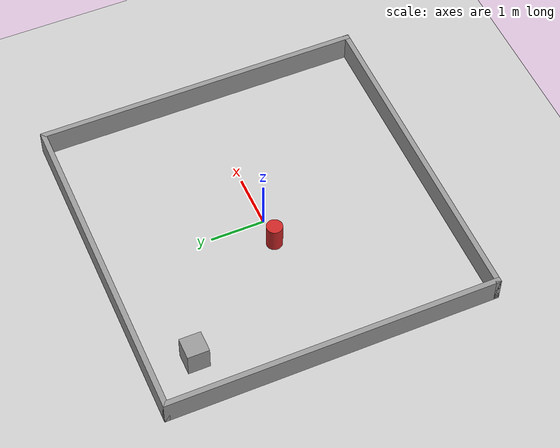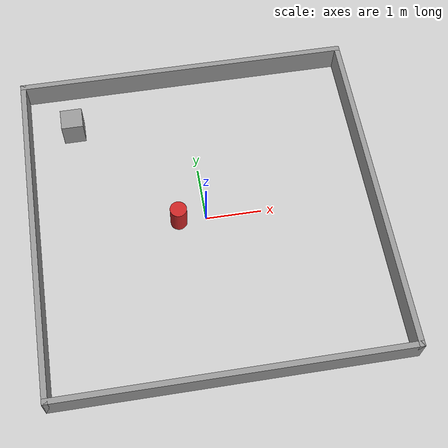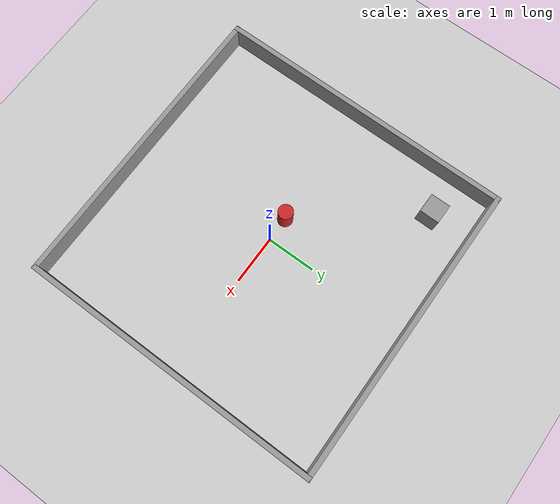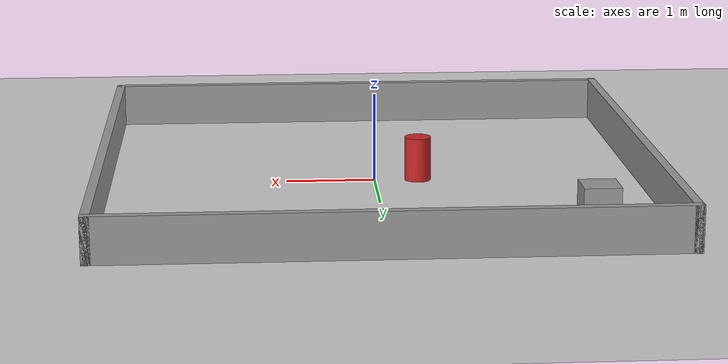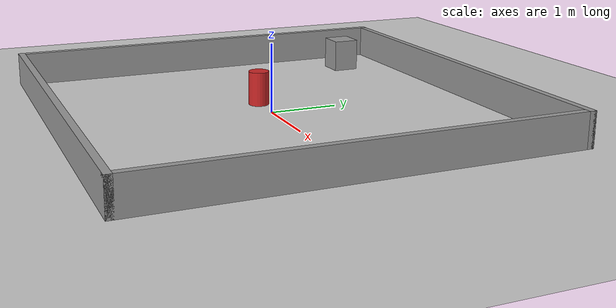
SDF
<?xml version="1.0"?>
<!-- generated by generate_line_room.py; edit the generator, not this file -->
<sdf version="1.6">
  <world name="default">

    <include>
      <uri>model://ground_plane</uri>
    </include>

    <include>
      <uri>model://sun</uri>
    </include>

    <scene>
      <shadows>false</shadows>
    </scene>

    <gui fullscreen='0'>
      <camera name='user_camera'>
        <pose frame=''>0 0 12 0 1.570796 0</pose>
        <view_controller>orbit</view_controller>
        <projection_type>perspective</projection_type>
      </camera>
    </gui>

    <physics type="ode">
      <real_time_update_rate>1000.0</real_time_update_rate>
      <max_step_size>0.001</max_step_size>
      <real_time_factor>1</real_time_factor>
    </physics>

    <model name="walls">
      <static>true</static>
      <link name="north">
        <pose>0 3.05 0.25 0 0 0</pose>
        <collision name="collision">
          <geometry><box><size>6.2 0.1 0.5</size></box></geometry>
        </collision>
        <visual name="visual">
          <geometry><box><size>6.2 0.1 0.5</size></box></geometry>
          <material>
            <script>
              <uri>file://media/materials/scripts/gazebo.material</uri>
              <name>Gazebo/Grey</name>
            </script>
          </material>
        </visual>
      </link>
      <link name="south">
        <pose>0 -3.05 0.25 0 0 0</pose>
        <collision name="collision">
          <geometry><box><size>6.2 0.1 0.5</size></box></geometry>
        </collision>
        <visual name="visual">
          <geometry><box><size>6.2 0.1 0.5</size></box></geometry>
          <material>
            <script>
              <uri>file://media/materials/scripts/gazebo.material</uri>
              <name>Gazebo/Grey</name>
            </script>
          </material>
        </visual>
      </link>
      <link name="east">
        <pose>3.05 0 0.25 0 0 0</pose>
        <collision name="collision">
          <geometry><box><size>0.1 6.2 0.5</size></box></geometry>
        </collision>
        <visual name="visual">
          <geometry><box><size>0.1 6.2 0.5</size></box></geometry>
          <material>
            <script>
              <uri>file://media/materials/scripts/gazebo.material</uri>
              <name>Gazebo/Grey</name>
            </script>
          </material>
        </visual>
      </link>
      <link name="west">
        <pose>-3.05 0 0.25 0 0 0</pose>
        <collision name="collision">
          <geometry><box><size>0.1 6.2 0.5</size></box></geometry>
        </collision>
        <visual name="visual">
          <geometry><box><size>0.1 6.2 0.5</size></box></geometry>
          <material>
            <script>
              <uri>file://media/materials/scripts/gazebo.material</uri>
              <name>Gazebo/Grey</name>
            </script>
          </material>
        </visual>
      </link>
    </model>

    <model name="pillar">
      <static>true</static>
      <pose>-0.5 0.0 0.25 0 0 0</pose>
      <link name="link">
        <collision name="collision">
          <geometry><cylinder><radius>0.15</radius><length>0.5</length></cylinder></geometry>
        </collision>
        <visual name="visual">
          <geometry><cylinder><radius>0.15</radius><length>0.5</length></cylinder></geometry>
          <material>
            <script>
              <uri>file://media/materials/scripts/gazebo.material</uri>
              <name>Gazebo/Red</name>
            </script>
          </material>
        </visual>
      </link>
    </model>

    <model name="marker_box">
      <static>true</static>
      <link name="link">
        <pose>-2.2 2.2 0.25 0 0 0</pose>
        <collision name="collision">
          <geometry><box><size>0.4 0.4 0.5</size></box></geometry>
        </collision>
        <visual name="visual">
          <geometry><box><size>0.4 0.4 0.5</size></box></geometry>
          <material>
            <script>
              <uri>file://media/materials/scripts/gazebo.material</uri>
              <name>Gazebo/Grey</name>
            </script>
          </material>
        </visual>
      </link>
    </model>

  </world>
</sdf>
